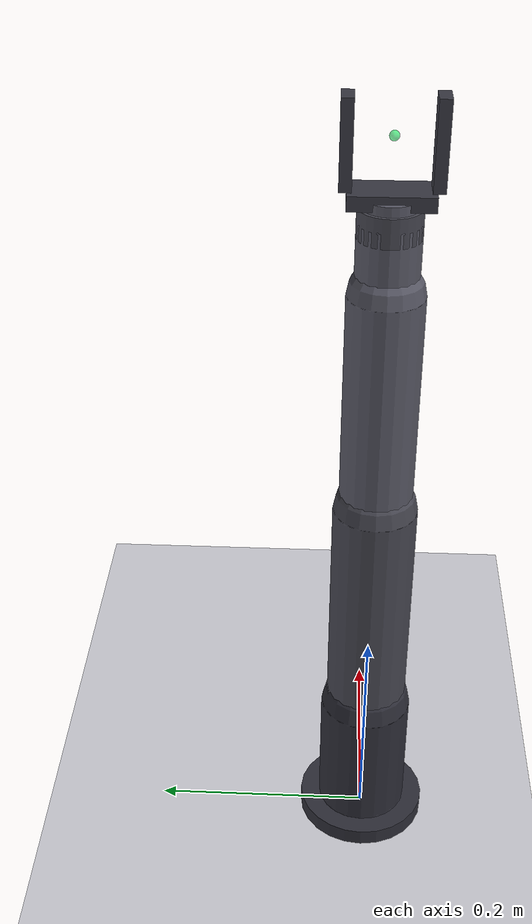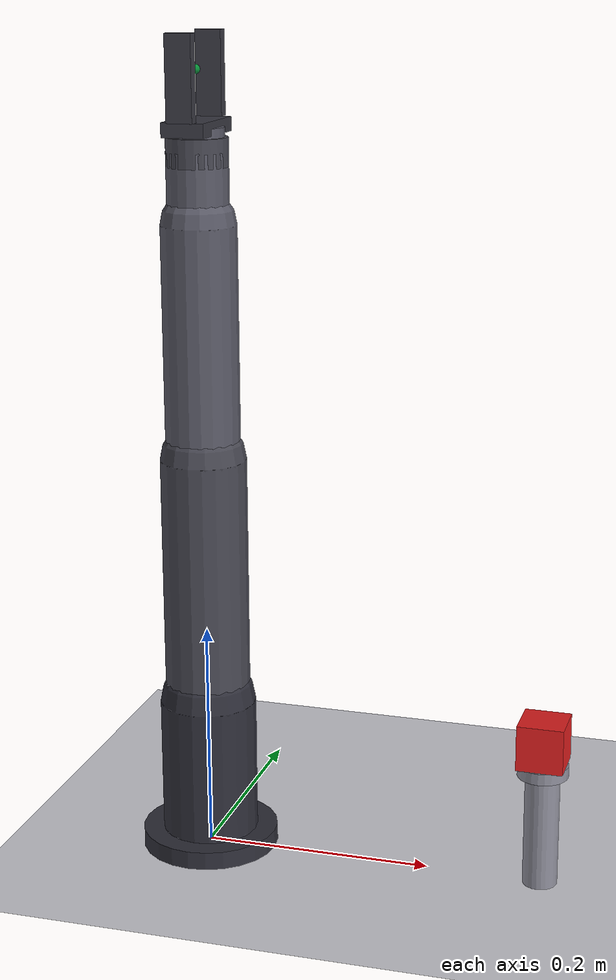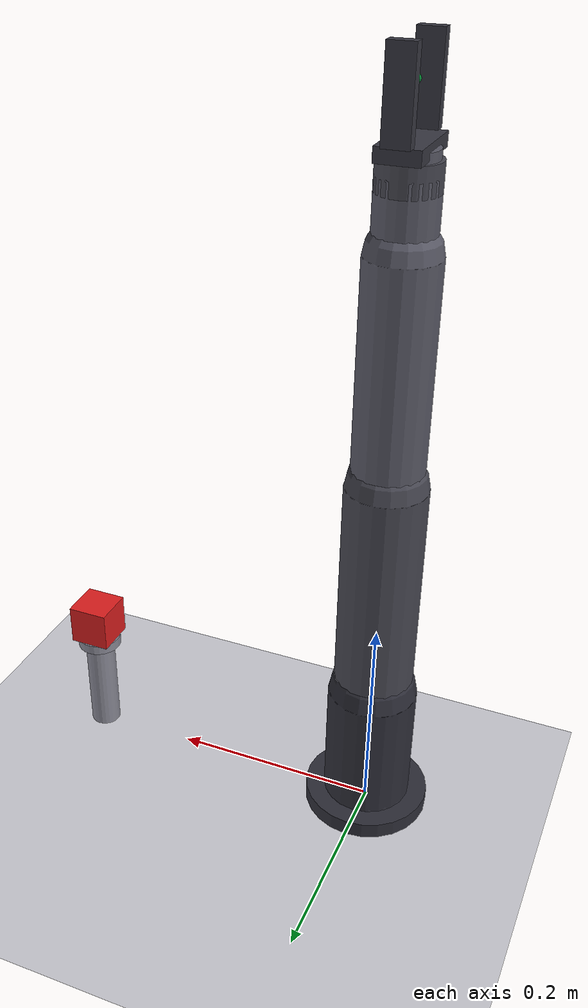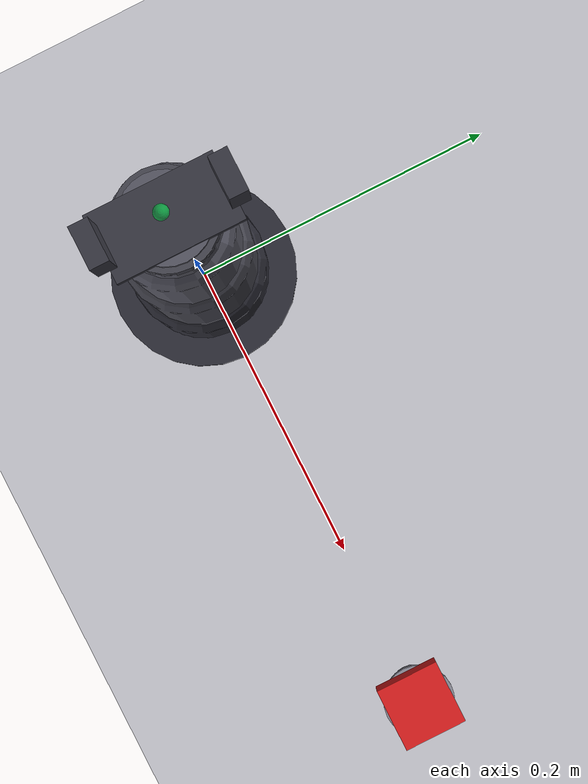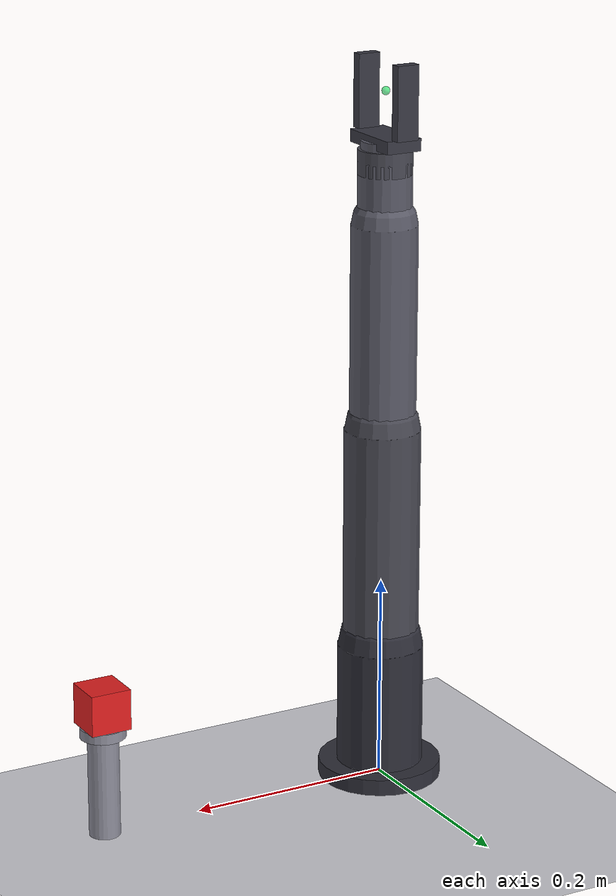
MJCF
<mujoco model="roboweaver_demo">
  <compiler angle="radian"/>

  <option timestep="0.002" gravity="0 0 -9.81" integrator="implicitfast">
    <flag contact="enable"/>
  </option>

  <default>
    <joint armature="0.01" damping="0.8"/>
    <geom condim="4" friction="1 0.5 0.01" solimp="0.95 0.99 0.001 0.5 2" solref="0.02 1"/>
    <position forcerange="-100 100"/>
  </default>

  <visual>
    <global offwidth="1280" offheight="960"/>
    <rgba haze="0.15 0.2 0.3 1"/>
    <quality shadowsize="4096"/>
  </visual>

  <asset>
    <texture name="grid" type="2d" builtin="checker" width="512" height="512"
             rgb1="0.85 0.85 0.88" rgb2="0.75 0.75 0.78"/>
    <material name="grid" texture="grid" texrepeat="8 8" reflectance="0.15"/>
    <material name="dark_metal" rgba="0.18 0.18 0.22 1" specular="0.6" shininess="0.8"/>
    <material name="light_metal" rgba="0.35 0.35 0.40 1" specular="0.5" shininess="0.6"/>
    <material name="mid_metal" rgba="0.28 0.28 0.32 1" specular="0.5" shininess="0.7"/>
    <material name="finger_mat" rgba="0.22 0.22 0.26 1" specular="0.4" shininess="0.5"/>
    <material name="stand_mat" rgba="0.55 0.55 0.60 1" specular="0.3"/>
    <material name="red_mat" rgba="0.88 0.12 0.12 1" specular="0.4" shininess="0.6"/>
  </asset>

  <worldbody>
    <!-- Lighting -->
    <light pos="0.3 -0.3 1.5" dir="0 0.1 -1" diffuse="0.9 0.9 0.95" specular="0.4 0.4 0.4"
           castshadow="true"/>
    <light pos="-0.3 0.5 1.0" dir="0.2 -0.3 -1" diffuse="0.3 0.3 0.4" specular="0.1 0.1 0.1"/>

    <!-- Ground plane -->
    <geom name="ground" type="plane" size="1.5 1.5 0.01" material="grid"/>

    <!--              ROBOT ARM (6-DOF)               -->

    <body name="base" pos="0 0 0">
      <geom name="base_mount" type="cylinder" size="0.06 0.015" material="dark_metal" mass="5"/>

      <!-- Link 1: Base rotation (yaw) -->
      <body name="link1" pos="0 0 0.015">
        <joint name="j0" type="hinge" axis="0 0 1" range="-3.14 3.14" damping="1.2"/>
        <geom name="link1_geom" type="capsule" fromto="0 0 0 0 0 0.12" size="0.042"
              material="dark_metal" mass="2.0"/>

        <!-- Link 2: Shoulder pitch -->
        <body name="link2" pos="0 0 0.12">
          <joint name="j1" type="hinge" axis="0 1 0" range="-2.35 2.35" damping="1.2"/>
          <geom name="link2_geom" type="capsule" fromto="0 0 0 0 0 0.22" size="0.037"
                material="mid_metal" mass="1.8"/>

          <!-- Link 3: Elbow pitch -->
          <body name="link3" pos="0 0 0.22">
            <joint name="j2" type="hinge" axis="0 1 0" range="-2.61 2.61" damping="1.0"/>
            <geom name="link3_geom" type="capsule" fromto="0 0 0 0 0 0.20" size="0.032"
                  material="light_metal" mass="1.4"/>

            <!-- Link 4: Wrist pitch -->
            <body name="link4" pos="0 0 0.20">
              <joint name="j3" type="hinge" axis="0 1 0" range="-2.61 2.61" damping="0.6"/>
              <geom name="link4_geom" type="capsule" fromto="0 0 0 0 0 0.06" size="0.026"
                    material="light_metal" mass="0.8"/>

              <!-- Link 5: Wrist yaw -->
              <body name="link5" pos="0 0 0.06">
                <joint name="j4" type="hinge" axis="0 0 1" range="-3.14 3.14" damping="0.4"/>
                <geom name="link5_geom" type="cylinder" size="0.026 0.012"
                      material="mid_metal" mass="0.5"/>

                <!-- Link 6: Wrist roll -->
                <body name="link6" pos="0 0 0.012">
                  <joint name="j5" type="hinge" axis="0 1 0" range="-3.14 3.14" damping="0.4"/>
                  <geom name="link6_geom" type="cylinder" size="0.023 0.008"
                        material="light_metal" mass="0.3"/>

                  <!-- ═══ Gripper (parallel jaw) ═══ -->
                  <body name="gripper_base" pos="0 0 0.008">
                    <geom name="gripper_mount" type="box" size="0.018 0.034 0.006"
                          material="finger_mat" mass="0.15"/>

                    <!-- End-effector site: center of finger contact zone -->
                    <site name="ee_site" pos="0 0 0.046" size="0.004" rgba="0 0.9 0.3 0.6"/>

                    <!-- Left finger -->
                    <body name="finger_left" pos="0 0.035 0.006">
                      <joint name="jf_left" type="slide" axis="0 -1 0" range="0 0.035"
                             damping="8" armature="0.005"/>
                      <geom name="lf_geom" type="box" size="0.011 0.005 0.035"
                            pos="0 0 0.035" material="finger_mat" mass="0.04"
                            friction="2.0 0.5 0.01" condim="6" solimp="0.95 0.99 0.001 0.5 2"/>
                    </body>

                    <!-- Right finger -->
                    <body name="finger_right" pos="0 -0.035 0.006">
                      <joint name="jf_right" type="slide" axis="0 1 0" range="0 0.035"
                             damping="8" armature="0.005"/>
                      <geom name="rf_geom" type="box" size="0.011 0.005 0.035"
                            pos="0 0 0.035" material="finger_mat" mass="0.04"
                            friction="2.0 0.5 0.01" condim="6" solimp="0.95 0.99 0.001 0.5 2"/>
                    </body>
                  </body>

                </body>
              </body>
            </body>
          </body>
        </body>
      </body>
    </body>

    <!--                OBJECT STAND                  -->

    <body name="stand" pos="0.30 0 0">
      <geom name="stand_pillar" type="cylinder" fromto="0 0 0 0 0 0.10"
            size="0.015" material="stand_mat"/>
      <geom name="stand_top" type="cylinder" size="0.022 0.005" pos="0 0 0.105"
            material="stand_mat"/>
    </body>

    <!--                 RED CUBE                     -->

    <body name="red_cube" pos="0.30 0 0.13">
      <freejoint name="cube_free"/>
      <geom name="cube_geom" type="box" size="0.02 0.02 0.02"
            material="red_mat" mass="0.05"
            friction="1.5 0.5 0.01" condim="6"
            solimp="0.95 0.99 0.001 0.5 2" solref="0.02 1"/>
      <site name="cube_center" size="0.003" rgba="1 1 0 0.3"/>
    </body>

  </worldbody>

  <!--           EQUALITY CONSTRAINTS               -->

  <equality>
    <!-- Couple left and right fingers: q_right = q_left -->
    <joint joint1="jf_left" joint2="jf_right" polycoef="0 1 0 0 0"/>
  </equality>

  <!--           CONTACT EXCLUSIONS                 -->

  <contact>
    <exclude body1="link3" body2="link5"/>
    <exclude body1="link3" body2="link6"/>
    <exclude body1="link3" body2="gripper_base"/>
    <exclude body1="link4" body2="gripper_base"/>
    <exclude body1="link4" body2="finger_left"/>
    <exclude body1="link4" body2="finger_right"/>
    <exclude body1="link5" body2="finger_left"/>
    <exclude body1="link5" body2="finger_right"/>
    <exclude body1="link6" body2="finger_left"/>
    <exclude body1="link6" body2="finger_right"/>
  </contact>

  <!--          ACTUATORS (position control)        -->

  <actuator>
    <position name="a0" joint="j0" kp="100" ctrlrange="-3.14 3.14"/>
    <position name="a1" joint="j1" kp="100" ctrlrange="-2.35 2.35"/>
    <position name="a2" joint="j2" kp="80"  ctrlrange="-2.61 2.61"/>
    <position name="a3" joint="j3" kp="50"  ctrlrange="-2.61 2.61"/>
    <position name="a4" joint="j4" kp="40"  ctrlrange="-3.14 3.14"/>
    <position name="a5" joint="j5" kp="40"  ctrlrange="-3.14 3.14"/>
    <position name="grip" joint="jf_left" kp="300" ctrlrange="0 0.035"/>
  </actuator>

</mujoco>
